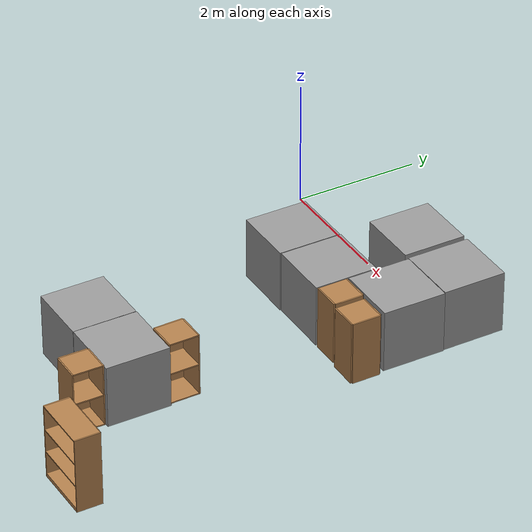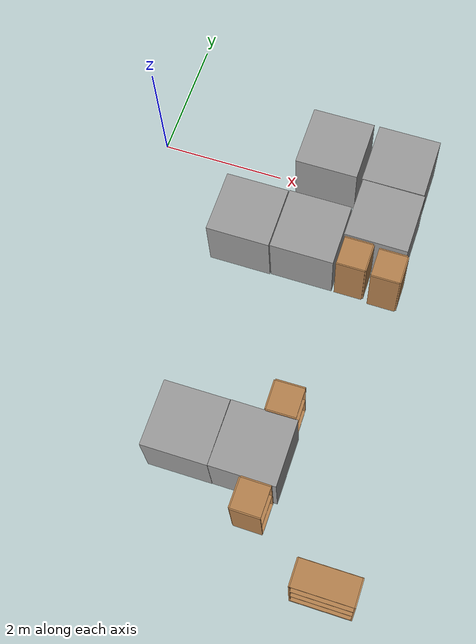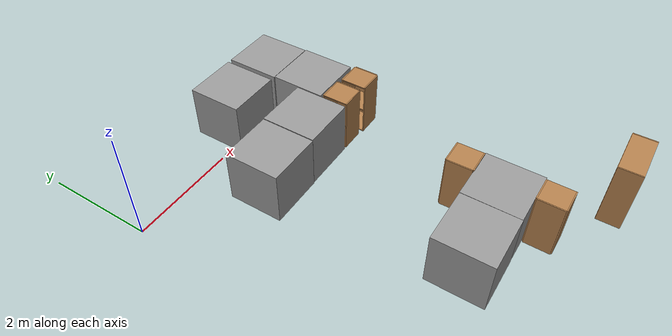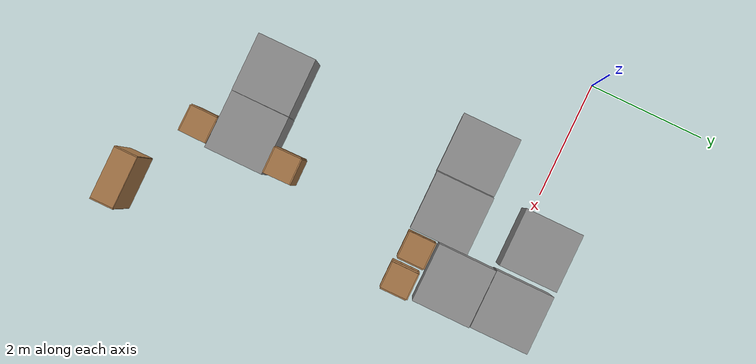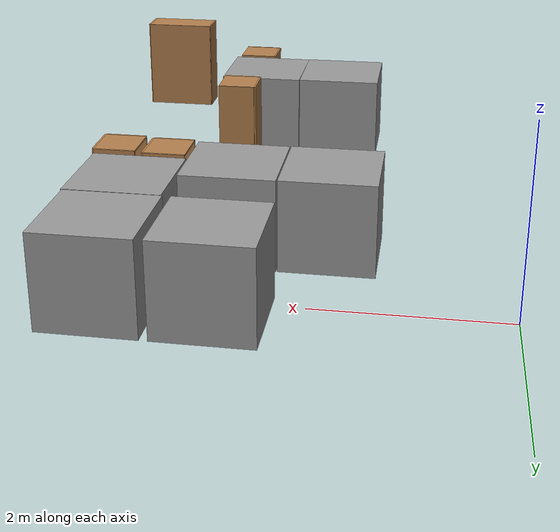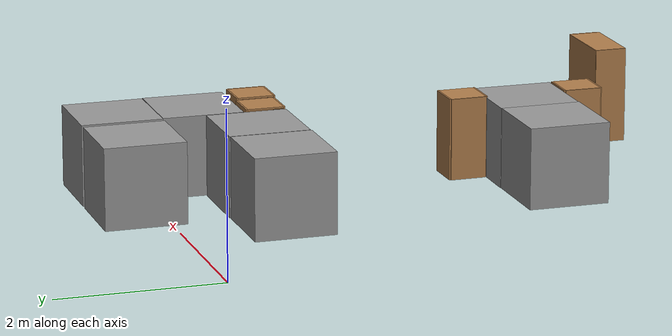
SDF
<sdf version="1.4">
 <world name="default">
  <model name="unit_box_1_2">
   <pose>2.13795 -4.69896 0.5 0 -0 0.001868</pose>
   <link name="link">
    <inertial>
     <mass>1</mass>
     <inertia><ixx>1</ixx><ixy>0</ixy><ixz>0</ixz><iyy>1</iyy><iyz>0</iyz><izz>1</izz></inertia>
    </inertial>
    <collision name="collision"><geometry><box><size>1 1 1</size></box></geometry></collision>
    <visual name="visual">
     <geometry><box><size>1 1 1</size></box></geometry>
     <material>
      <script><uri>file://media/materials/scripts/gazebo.material</uri><name>Gazebo/Grey</name></script>
     </material>
    </visual>
    <velocity_decay><linear>0</linear><angular>0</angular></velocity_decay>
   </link>
   <static>0</static>
  </model>
  <model name="unit_box_7">
   <pose>2.82216 0.318267 0.5 0 -0 -2e-06</pose>
   <link name="link">
    <inertial>
     <mass>1</mass>
     <inertia><ixx>1</ixx><ixy>0</ixy><ixz>0</ixz><iyy>1</iyy><iyz>0</iyz><izz>1</izz></inertia>
    </inertial>
    <collision name="collision"><geometry><box><size>1 1 1</size></box></geometry></collision>
    <visual name="visual">
     <geometry><box><size>1 1 1</size></box></geometry>
     <material>
      <script><uri>file://media/materials/scripts/gazebo.material</uri><name>Gazebo/Grey</name></script>
     </material>
    </visual>
    <velocity_decay><linear>0</linear><angular>0</angular></velocity_decay>
   </link>
   <static>0</static>
  </model>
  <model name="unit_box_8_0">
   <pose>3.90619 0.318266 0.5 0 -0 -3e-06</pose>
   <link name="link">
    <inertial>
     <mass>1</mass>
     <inertia><ixx>1</ixx><ixy>0</ixy><ixz>0</ixz><iyy>1</iyy><iyz>0</iyz><izz>1</izz></inertia>
    </inertial>
    <collision name="collision"><geometry><box><size>1 1 1</size></box></geometry></collision>
    <visual name="visual">
     <geometry><box><size>1 1 1</size></box></geometry>
     <material>
      <script><uri>file://media/materials/scripts/gazebo.material</uri><name>Gazebo/Grey</name></script>
     </material>
    </visual>
    <velocity_decay><linear>0</linear><angular>0</angular></velocity_decay>
   </link>
   <static>0</static>
  </model>
  <model name="unit_box_14">
   <pose>3.14226 -4.69526 0.497872 -0.000157 0.000309 -0.003287</pose>
   <link name="link">
    <inertial>
     <mass>1</mass>
     <inertia><ixx>1</ixx><ixy>0</ixy><ixz>0</ixz><iyy>1</iyy><iyz>0</iyz><izz>1</izz></inertia>
    </inertial>
    <collision name="collision"><geometry><box><size>1 1 1</size></box></geometry></collision>
    <visual name="visual">
     <geometry><box><size>1 1 1</size></box></geometry>
     <material>
      <script><uri>file://media/materials/scripts/gazebo.material</uri><name>Gazebo/Grey</name></script>
     </material>
    </visual>
    <velocity_decay><linear>0</linear><angular>0</angular></velocity_decay>
   </link>
   <static>0</static>
  </model>
  <model name="cabinet">
   <static>1</static>
   <link name="cabinet_bottom_plate">
    <inertial>
     <pose>0 0 -1 0 -0 0</pose>
     <inertia><ixx>2.05</ixx><ixy>0</ixy><ixz>0</ixz><iyy>2.05</iyy><iyz>0</iyz><izz>2.05</izz></inertia>
     <mass>25</mass>
    </inertial>
    <collision name="cabinet_bottom_plate_geom">
     <pose>0 0 0.01 0 -0 0</pose>
     <geometry><box><size>0.45 0.45 0.02</size></box></geometry>
    </collision>
    <visual name="cabinet_bottom_plate_geom_visual">
     <pose>0 0 0.01 0 -0 0</pose>
     <geometry><box><size>0.45 0.45 0.02</size></box></geometry>
     <material>
      <script><uri>file://media/materials/scripts/gazebo.material</uri><name>Gazebo/Wood</name></script>
     </material>
    </visual>
    <collision name="cabinet_bottom_plate_geom_cabinet_back_plate">
     <pose>0.235 0 0.51 0 -0 0</pose>
     <geometry><box><size>0.02 0.45 1.02</size></box></geometry>
    </collision>
    <visual name="cabinet_bottom_plate_geom_cabinet_back_plate_visual">
     <pose>0.235 0 0.51 0 -0 0</pose>
     <geometry><box><size>0.02 0.45 1.02</size></box></geometry>
     <material>
      <script><uri>file://media/materials/scripts/gazebo.material</uri><name>Gazebo/Wood</name></script>
     </material>
    </visual>
    <collision name="cabinet_bottom_plate_geom_cabinet_left_plate">
     <pose>0 0.235 0.51 0 -0 0</pose>
     <geometry><box><size>0.45 0.02 1.02</size></box></geometry>
    </collision>
    <visual name="cabinet_bottom_plate_geom_cabinet_left_plate_visual">
     <pose>0 0.235 0.51 0 -0 0</pose>
     <geometry><box><size>0.45 0.02 1.02</size></box></geometry>
     <material>
      <script><uri>file://media/materials/scripts/gazebo.material</uri><name>Gazebo/Wood</name></script>
     </material>
    </visual>
    <collision name="cabinet_bottom_plate_geom_cabinet_middle_plate">
     <pose>0 0 0.51 0 -0 0</pose>
     <geometry><box><size>0.45 0.45 0.02</size></box></geometry>
    </collision>
    <visual name="cabinet_bottom_plate_geom_cabinet_middle_plate_visual">
     <pose>0 0 0.51 0 -0 0</pose>
     <geometry><box><size>0.45 0.45 0.02</size></box></geometry>
     <material>
      <script><uri>file://media/materials/scripts/gazebo.material</uri><name>Gazebo/Wood</name></script>
     </material>
    </visual>
    <collision name="cabinet_bottom_plate_geom_cabinet_right_plate">
     <pose>0 -0.235 0.51 0 -0 0</pose>
     <geometry><box><size>0.45 0.02 1.02</size></box></geometry>
    </collision>
    <visual name="cabinet_bottom_plate_geom_cabinet_right_plate_visual">
     <pose>0 -0.235 0.51 0 -0 0</pose>
     <geometry><box><size>0.45 0.02 1.02</size></box></geometry>
     <material>
      <script><uri>file://media/materials/scripts/gazebo.material</uri><name>Gazebo/Wood</name></script>
     </material>
    </visual>
    <collision name="cabinet_bottom_plate_geom_cabinet_top_plate">
     <pose>0 0 1.01 0 -0 0</pose>
     <geometry><box><size>0.45 0.45 0.02</size></box></geometry>
    </collision>
    <visual name="cabinet_bottom_plate_geom_cabinet_top_plate_visual">
     <pose>0 0 1.01 0 -0 0</pose>
     <geometry><box><size>0.45 0.45 0.02</size></box></geometry>
     <material>
      <script><uri>file://media/materials/scripts/gazebo.material</uri><name>Gazebo/Wood</name></script>
     </material>
    </visual>
    <velocity_decay><linear>0</linear><angular>0</angular></velocity_decay>
   </link>
   <pose>3.38074 -3.95771 0 0 0 -3.13001</pose>
  </model>
  <model name="cabinet_0">
   <static>1</static>
   <link name="cabinet_bottom_plate">
    <inertial>
     <pose>0 0 -1 0 -0 0</pose>
     <inertia><ixx>2.05</ixx><ixy>0</ixy><ixz>0</ixz><iyy>2.05</iyy><iyz>0</iyz><izz>2.05</izz></inertia>
     <mass>25</mass>
    </inertial>
    <collision name="cabinet_bottom_plate_geom">
     <pose>0 0 0.01 0 -0 0</pose>
     <geometry><box><size>0.45 0.45 0.02</size></box></geometry>
    </collision>
    <visual name="cabinet_bottom_plate_geom_visual">
     <pose>0 0 0.01 0 -0 0</pose>
     <geometry><box><size>0.45 0.45 0.02</size></box></geometry>
     <material>
      <script><uri>file://media/materials/scripts/gazebo.material</uri><name>Gazebo/Wood</name></script>
     </material>
    </visual>
    <collision name="cabinet_bottom_plate_geom_cabinet_back_plate">
     <pose>0.235 0 0.51 0 -0 0</pose>
     <geometry><box><size>0.02 0.45 1.02</size></box></geometry>
    </collision>
    <visual name="cabinet_bottom_plate_geom_cabinet_back_plate_visual">
     <pose>0.235 0 0.51 0 -0 0</pose>
     <geometry><box><size>0.02 0.45 1.02</size></box></geometry>
     <material>
      <script><uri>file://media/materials/scripts/gazebo.material</uri><name>Gazebo/Wood</name></script>
     </material>
    </visual>
    <collision name="cabinet_bottom_plate_geom_cabinet_left_plate">
     <pose>0 0.235 0.51 0 -0 0</pose>
     <geometry><box><size>0.45 0.02 1.02</size></box></geometry>
    </collision>
    <visual name="cabinet_bottom_plate_geom_cabinet_left_plate_visual">
     <pose>0 0.235 0.51 0 -0 0</pose>
     <geometry><box><size>0.45 0.02 1.02</size></box></geometry>
     <material>
      <script><uri>file://media/materials/scripts/gazebo.material</uri><name>Gazebo/Wood</name></script>
     </material>
    </visual>
    <collision name="cabinet_bottom_plate_geom_cabinet_middle_plate">
     <pose>0 0 0.51 0 -0 0</pose>
     <geometry><box><size>0.45 0.45 0.02</size></box></geometry>
    </collision>
    <visual name="cabinet_bottom_plate_geom_cabinet_middle_plate_visual">
     <pose>0 0 0.51 0 -0 0</pose>
     <geometry><box><size>0.45 0.45 0.02</size></box></geometry>
     <material>
      <script><uri>file://media/materials/scripts/gazebo.material</uri><name>Gazebo/Wood</name></script>
     </material>
    </visual>
    <collision name="cabinet_bottom_plate_geom_cabinet_right_plate">
     <pose>0 -0.235 0.51 0 -0 0</pose>
     <geometry><box><size>0.45 0.02 1.02</size></box></geometry>
    </collision>
    <visual name="cabinet_bottom_plate_geom_cabinet_right_plate_visual">
     <pose>0 -0.235 0.51 0 -0 0</pose>
     <geometry><box><size>0.45 0.02 1.02</size></box></geometry>
     <material>
      <script><uri>file://media/materials/scripts/gazebo.material</uri><name>Gazebo/Wood</name></script>
     </material>
    </visual>
    <collision name="cabinet_bottom_plate_geom_cabinet_top_plate">
     <pose>0 0 1.01 0 -0 0</pose>
     <geometry><box><size>0.45 0.45 0.02</size></box></geometry>
    </collision>
    <visual name="cabinet_bottom_plate_geom_cabinet_top_plate_visual">
     <pose>0 0 1.01 0 -0 0</pose>
     <geometry><box><size>0.45 0.45 0.02</size></box></geometry>
     <material>
      <script><uri>file://media/materials/scripts/gazebo.material</uri><name>Gazebo/Wood</name></script>
     </material>
    </visual>
    <velocity_decay><linear>0</linear><angular>0</angular></velocity_decay>
   </link>
   <pose>3.35545 -5.44222 -0 0 -0 3.13235</pose>
  </model>
  <model name="unit_box_16">
   <pose>3.91982 -0.689213 0.5 0 0 -0.005742</pose>
   <link name="link">
    <inertial>
     <mass>1</mass>
     <inertia><ixx>1</ixx><ixy>0</ixy><ixz>0</ixz><iyy>1</iyy><iyz>0</iyz><izz>1</izz></inertia>
    </inertial>
    <collision name="collision"><geometry><box><size>1 1 1</size></box></geometry></collision>
    <visual name="visual">
     <geometry><box><size>1 1 1</size></box></geometry>
     <material>
      <script><uri>file://media/materials/scripts/gazebo.material</uri><name>Gazebo/Grey</name></script>
     </material>
    </visual>
    <velocity_decay><linear>0</linear><angular>0</angular></velocity_decay>
   </link>
   <static>0</static>
  </model>
  <model name="cabinet_4">
   <static>1</static>
   <link name="cabinet_bottom_plate">
    <inertial>
     <pose>0 0 -1 0 -0 0</pose>
     <inertia><ixx>2.05</ixx><ixy>0</ixy><ixz>0</ixz><iyy>2.05</iyy><iyz>0</iyz><izz>2.05</izz></inertia>
     <mass>25</mass>
    </inertial>
    <collision name="cabinet_bottom_plate_geom">
     <pose>0 0 0.01 0 -0 0</pose>
     <geometry><box><size>0.45 0.45 0.02</size></box></geometry>
    </collision>
    <visual name="cabinet_bottom_plate_geom_visual">
     <pose>0 0 0.01 0 -0 0</pose>
     <geometry><box><size>0.45 0.45 0.02</size></box></geometry>
     <material>
      <script><uri>file://media/materials/scripts/gazebo.material</uri><name>Gazebo/Wood</name></script>
     </material>
    </visual>
    <collision name="cabinet_bottom_plate_geom_cabinet_back_plate">
     <pose>0.235 0 0.51 0 -0 0</pose>
     <geometry><box><size>0.02 0.45 1.02</size></box></geometry>
    </collision>
    <visual name="cabinet_bottom_plate_geom_cabinet_back_plate_visual">
     <pose>0.235 0 0.51 0 -0 0</pose>
     <geometry><box><size>0.02 0.45 1.02</size></box></geometry>
     <material>
      <script><uri>file://media/materials/scripts/gazebo.material</uri><name>Gazebo/Wood</name></script>
     </material>
    </visual>
    <collision name="cabinet_bottom_plate_geom_cabinet_left_plate">
     <pose>0 0.235 0.51 0 -0 0</pose>
     <geometry><box><size>0.45 0.02 1.02</size></box></geometry>
    </collision>
    <visual name="cabinet_bottom_plate_geom_cabinet_left_plate_visual">
     <pose>0 0.235 0.51 0 -0 0</pose>
     <geometry><box><size>0.45 0.02 1.02</size></box></geometry>
     <material>
      <script><uri>file://media/materials/scripts/gazebo.material</uri><name>Gazebo/Wood</name></script>
     </material>
    </visual>
    <collision name="cabinet_bottom_plate_geom_cabinet_middle_plate">
     <pose>0 0 0.51 0 -0 0</pose>
     <geometry><box><size>0.45 0.45 0.02</size></box></geometry>
    </collision>
    <visual name="cabinet_bottom_plate_geom_cabinet_middle_plate_visual">
     <pose>0 0 0.51 0 -0 0</pose>
     <geometry><box><size>0.45 0.45 0.02</size></box></geometry>
     <material>
      <script><uri>file://media/materials/scripts/gazebo.material</uri><name>Gazebo/Wood</name></script>
     </material>
    </visual>
    <collision name="cabinet_bottom_plate_geom_cabinet_right_plate">
     <pose>0 -0.235 0.51 0 -0 0</pose>
     <geometry><box><size>0.45 0.02 1.02</size></box></geometry>
    </collision>
    <visual name="cabinet_bottom_plate_geom_cabinet_right_plate_visual">
     <pose>0 -0.235 0.51 0 -0 0</pose>
     <geometry><box><size>0.45 0.02 1.02</size></box></geometry>
     <material>
      <script><uri>file://media/materials/scripts/gazebo.material</uri><name>Gazebo/Wood</name></script>
     </material>
    </visual>
    <collision name="cabinet_bottom_plate_geom_cabinet_top_plate">
     <pose>0 0 1.01 0 -0 0</pose>
     <geometry><box><size>0.45 0.45 0.02</size></box></geometry>
    </collision>
    <visual name="cabinet_bottom_plate_geom_cabinet_top_plate_visual">
     <pose>0 0 1.01 0 -0 0</pose>
     <geometry><box><size>0.45 0.45 0.02</size></box></geometry>
     <material>
      <script><uri>file://media/materials/scripts/gazebo.material</uri><name>Gazebo/Wood</name></script>
     </material>
    </visual>
    <velocity_decay><linear>0</linear><angular>0</angular></velocity_decay>
   </link>
   <pose>4.21741 -1.50744 0 0 -0 0</pose>
  </model>
  <model name="cabinet_6">
   <static>1</static>
   <link name="cabinet_bottom_plate">
    <inertial>
     <pose>0 0 -1 0 -0 0</pose>
     <inertia><ixx>2.05</ixx><ixy>0</ixy><ixz>0</ixz><iyy>2.05</iyy><iyz>0</iyz><izz>2.05</izz></inertia>
     <mass>25</mass>
    </inertial>
    <collision name="cabinet_bottom_plate_geom">
     <pose>0 0 0.01 0 -0 0</pose>
     <geometry><box><size>0.45 0.45 0.02</size></box></geometry>
    </collision>
    <visual name="cabinet_bottom_plate_geom_visual">
     <pose>0 0 0.01 0 -0 0</pose>
     <geometry><box><size>0.45 0.45 0.02</size></box></geometry>
     <material>
      <script><uri>file://media/materials/scripts/gazebo.material</uri><name>Gazebo/Wood</name></script>
     </material>
    </visual>
    <collision name="cabinet_bottom_plate_geom_cabinet_back_plate">
     <pose>0.235 0 0.51 0 -0 0</pose>
     <geometry><box><size>0.02 0.45 1.02</size></box></geometry>
    </collision>
    <visual name="cabinet_bottom_plate_geom_cabinet_back_plate_visual">
     <pose>0.235 0 0.51 0 -0 0</pose>
     <geometry><box><size>0.02 0.45 1.02</size></box></geometry>
     <material>
      <script><uri>file://media/materials/scripts/gazebo.material</uri><name>Gazebo/Wood</name></script>
     </material>
    </visual>
    <collision name="cabinet_bottom_plate_geom_cabinet_left_plate">
     <pose>0 0.235 0.51 0 -0 0</pose>
     <geometry><box><size>0.45 0.02 1.02</size></box></geometry>
    </collision>
    <visual name="cabinet_bottom_plate_geom_cabinet_left_plate_visual">
     <pose>0 0.235 0.51 0 -0 0</pose>
     <geometry><box><size>0.45 0.02 1.02</size></box></geometry>
     <material>
      <script><uri>file://media/materials/scripts/gazebo.material</uri><name>Gazebo/Wood</name></script>
     </material>
    </visual>
    <collision name="cabinet_bottom_plate_geom_cabinet_middle_plate">
     <pose>0 0 0.51 0 -0 0</pose>
     <geometry><box><size>0.45 0.45 0.02</size></box></geometry>
    </collision>
    <visual name="cabinet_bottom_plate_geom_cabinet_middle_plate_visual">
     <pose>0 0 0.51 0 -0 0</pose>
     <geometry><box><size>0.45 0.45 0.02</size></box></geometry>
     <material>
      <script><uri>file://media/materials/scripts/gazebo.material</uri><name>Gazebo/Wood</name></script>
     </material>
    </visual>
    <collision name="cabinet_bottom_plate_geom_cabinet_right_plate">
     <pose>0 -0.235 0.51 0 -0 0</pose>
     <geometry><box><size>0.45 0.02 1.02</size></box></geometry>
    </collision>
    <visual name="cabinet_bottom_plate_geom_cabinet_right_plate_visual">
     <pose>0 -0.235 0.51 0 -0 0</pose>
     <geometry><box><size>0.45 0.02 1.02</size></box></geometry>
     <material>
      <script><uri>file://media/materials/scripts/gazebo.material</uri><name>Gazebo/Wood</name></script>
     </material>
    </visual>
    <collision name="cabinet_bottom_plate_geom_cabinet_top_plate">
     <pose>0 0 1.01 0 -0 0</pose>
     <geometry><box><size>0.45 0.45 0.02</size></box></geometry>
    </collision>
    <visual name="cabinet_bottom_plate_geom_cabinet_top_plate_visual">
     <pose>0 0 1.01 0 -0 0</pose>
     <geometry><box><size>0.45 0.45 0.02</size></box></geometry>
     <material>
      <script><uri>file://media/materials/scripts/gazebo.material</uri><name>Gazebo/Wood</name></script>
     </material>
    </visual>
    <velocity_decay><linear>0</linear><angular>0</angular></velocity_decay>
   </link>
   <pose>3.66748 -1.4687 0 0 -0 0</pose>
  </model>
  <model name="unit_box_1">
   <pose>2.89851 -1.2125 0.5 0 -0 0.000298</pose>
   <link name="link">
    <inertial>
     <mass>1</mass>
     <inertia><ixx>1</ixx><ixy>0</ixy><ixz>0</ixz><iyy>1</iyy><iyz>0</iyz><izz>1</izz></inertia>
    </inertial>
    <collision name="collision"><geometry><box><size>1 1 1</size></box></geometry></collision>
    <visual name="visual">
     <geometry><box><size>1 1 1</size></box></geometry>
     <material>
      <script><uri>file://media/materials/scripts/gazebo.material</uri><name>Gazebo/Grey</name></script>
     </material>
    </visual>
    <velocity_decay><linear>0</linear><angular>0</angular></velocity_decay>
   </link>
   <static>0</static>
  </model>
  <model name="unit_box_2_0">
   <pose>1.88459 -1.22208 0.5 0 -0 0</pose>
   <link name="link">
    <inertial>
     <mass>1</mass>
     <inertia><ixx>1</ixx><ixy>0</ixy><ixz>0</ixz><iyy>1</iyy><iyz>0</iyz><izz>1</izz></inertia>
    </inertial>
    <collision name="collision"><geometry><box><size>1 1 1</size></box></geometry></collision>
    <visual name="visual">
     <geometry><box><size>1 1 1</size></box></geometry>
     <material>
      <script><uri>file://media/materials/scripts/gazebo.material</uri><name>Gazebo/Grey</name></script>
     </material>
    </visual>
    <velocity_decay><linear>0</linear><angular>0</angular></velocity_decay>
   </link>
   <static>0</static>
  </model>
  <model name="bookshelf_1">
   <static>1</static>
   <link name="link">
    <inertial><mass>1</mass></inertial>
    <collision name="back">
     <pose>0 0.005 0.6 0 -0 0</pose>
     <geometry><box><size>0.9 0.01 1.2</size></box></geometry>
    </collision>
    <visual name="visual1">
     <pose>0 0.005 0.6 0 -0 0</pose>
     <geometry><box><size>0.9 0.01 1.2</size></box></geometry>
     <material>
      <script><uri>file://media/materials/scripts/gazebo.material</uri><name>Gazebo/Wood</name></script>
     </material>
    </visual>
    <collision name="left_side">
     <pose>0.45 -0.195 0.6 0 -0 0</pose>
     <geometry><box><size>0.02 0.4 1.2</size></box></geometry>
    </collision>
    <visual name="visual2">
     <pose>0.45 -0.195 0.6 0 -0 0</pose>
     <geometry><box><size>0.02 0.4 1.2</size></box></geometry>
     <material>
      <script><uri>file://media/materials/scripts/gazebo.material</uri><name>Gazebo/Wood</name></script>
     </material>
    </visual>
    <collision name="right_side">
     <pose>-0.45 -0.195 0.6 0 -0 0</pose>
     <geometry><box><size>0.02 0.4 1.2</size></box></geometry>
    </collision>
    <visual name="visual3">
     <pose>-0.45 -0.195 0.6 0 -0 0</pose>
     <geometry><box><size>0.02 0.4 1.2</size></box></geometry>
     <material>
      <script><uri>file://media/materials/scripts/gazebo.material</uri><name>Gazebo/Wood</name></script>
     </material>
    </visual>
    <collision name="bottom">
     <pose>0 -0.195 0.03 0 -0 0</pose>
     <geometry><box><size>0.88 0.4 0.06</size></box></geometry>
    </collision>
    <visual name="visual4">
     <pose>0 -0.195 0.03 0 -0 0</pose>
     <geometry><box><size>0.88 0.4 0.06</size></box></geometry>
     <material>
      <script><uri>file://media/materials/scripts/gazebo.material</uri><name>Gazebo/Wood</name></script>
     </material>
    </visual>
    <collision name="top">
     <pose>0 -0.195 1.19 0 -0 0</pose>
     <geometry><box><size>0.88 0.4 0.02</size></box></geometry>
    </collision>
    <visual name="visual5">
     <pose>0 -0.195 1.19 0 -0 0</pose>
     <geometry><box><size>0.88 0.4 0.02</size></box></geometry>
     <material>
      <script><uri>file://media/materials/scripts/gazebo.material</uri><name>Gazebo/Wood</name></script>
     </material>
    </visual>
    <collision name="low_shelf">
     <pose>0 -0.195 0.43 0 -0 0</pose>
     <geometry><box><size>0.88 0.4 0.02</size></box></geometry>
    </collision>
    <visual name="visual6">
     <pose>0 -0.195 0.43 0 -0 0</pose>
     <geometry><box><size>0.88 0.4 0.02</size></box></geometry>
     <material>
      <script><uri>file://media/materials/scripts/gazebo.material</uri><name>Gazebo/Wood</name></script>
     </material>
    </visual>
    <collision name="high_shelf">
     <pose>0 -0.195 0.8 0 -0 0</pose>
     <geometry><box><size>0.88 0.4 0.02</size></box></geometry>
    </collision>
    <visual name="visual7">
     <pose>0 -0.195 0.8 0 -0 0</pose>
     <geometry><box><size>0.88 0.4 0.02</size></box></geometry>
     <material>
      <script><uri>file://media/materials/scripts/gazebo.material</uri><name>Gazebo/Wood</name></script>
     </material>
    </visual>
    <velocity_decay><linear>0</linear><angular>0</angular></velocity_decay>
   </link>
   <pose>4.6741 -6.04875 0 0 -0 0</pose>
  </model>
 </world>
</sdf>
